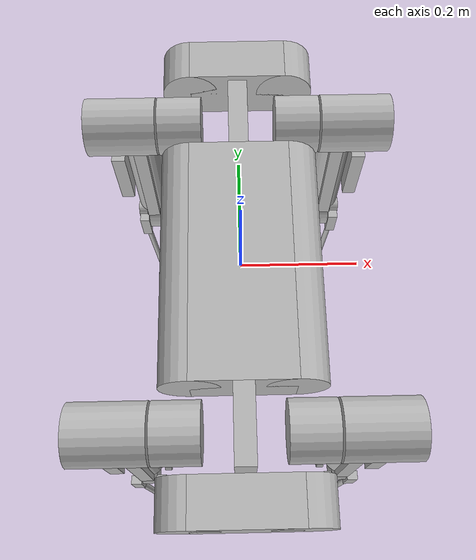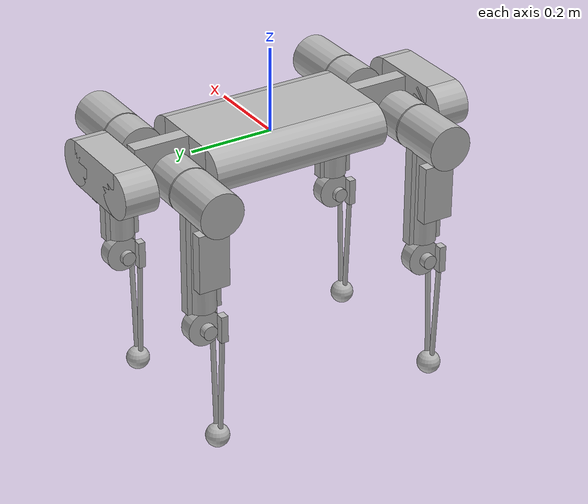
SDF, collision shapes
<sdf version='1.6'>
  <model name='dogbot'>
    <link name='base_link'>
      <pose frame=''>0 0 0 0 -0 0</pose>
      <inertial>
        <pose frame=''>0 0 0 0 -0 0</pose>
        <mass>9.301</mass>
        <inertia>
          <ixx>0.41</ixx>
          <ixy>0</ixy>
          <ixz>0</ixz>
          <iyy>0.091</iyy>
          <iyz>0</iyz>
          <izz>0.482</izz>
        </inertia>
      </inertial>
      <collision name='base_link_fixed_joint_lump__body_collision'>
        <pose frame=''>0 0 0 0 -0 0</pose>
        <geometry>
          <box>
            <size>0.177 0.433 0.105</size>
          </box>
        </geometry>
        <surface>
          <contact>
            <ode>
              <kp>1e+06</kp>
              <kd>1</kd>
            </ode>
          </contact>
          <friction>
            <ode>
              <mu>200</mu>
              <mu2>100</mu2>
            </ode>
          </friction>
        </surface>
      </collision>
      <collision name='base_link_fixed_joint_lump__body_collision_1'>
        <pose frame=''>0.0885 0 0 1.5708 -0 0</pose>
        <geometry>
          <cylinder>
            <length>0.433</length>
            <radius>0.0525</radius>
          </cylinder>
        </geometry>
        <surface>
          <contact>
            <ode>
              <kp>1e+06</kp>
              <kd>1</kd>
            </ode>
          </contact>
          <friction>
            <ode>
              <mu>200</mu>
              <mu2>100</mu2>
            </ode>
          </friction>
        </surface>
      </collision>
      <collision name='base_link_fixed_joint_lump__body_collision_2'>
        <pose frame=''>-0.0885 0 0 1.5708 -0 0</pose>
        <geometry>
          <cylinder>
            <length>0.433</length>
            <radius>0.0525</radius>
          </cylinder>
        </geometry>
        <surface>
          <contact>
            <ode>
              <kp>1e+06</kp>
              <kd>1</kd>
            </ode>
          </contact>
          <friction>
            <ode>
              <mu>200</mu>
              <mu2>100</mu2>
            </ode>
          </friction>
        </surface>
      </collision>
      <collision name='base_link_fixed_joint_lump__body_collision_3'>
        <pose frame=''>0 0.2825 0 0 -0 0</pose>
        <geometry>
          <box>
            <size>0.035 0.132 0.105</size>
          </box>
        </geometry>
        <surface>
          <contact>
            <ode>
              <kp>1e+06</kp>
              <kd>1</kd>
            </ode>
          </contact>
          <friction>
            <ode>
              <mu>200</mu>
              <mu2>100</mu2>
            </ode>
          </friction>
        </surface>
      </collision>
      <collision name='base_link_fixed_joint_lump__body_collision_4'>
        <pose frame=''>0 -0.2825 0 0 -0 0</pose>
        <geometry>
          <box>
            <size>0.035 0.132 0.105</size>
          </box>
        </geometry>
        <surface>
          <contact>
            <ode>
              <kp>1e+06</kp>
              <kd>1</kd>
            </ode>
          </contact>
          <friction>
            <ode>
              <mu>200</mu>
              <mu2>100</mu2>
            </ode>
          </friction>
        </surface>
      </collision>
      <collision name='base_link_fixed_joint_lump__body_collision_5'>
        <pose frame=''>0 0.3975 0 0 -0 0</pose>
        <geometry>
          <box>
            <size>0.177 0.08 0.105</size>
          </box>
        </geometry>
        <surface>
          <contact>
            <ode>
              <kp>1e+06</kp>
              <kd>1</kd>
            </ode>
          </contact>
          <friction>
            <ode>
              <mu>200</mu>
              <mu2>100</mu2>
            </ode>
          </friction>
        </surface>
      </collision>
      <collision name='base_link_fixed_joint_lump__body_collision_6'>
        <pose frame=''>0.0885 0.3975 0 1.5708 -0 0</pose>
        <geometry>
          <cylinder>
            <length>0.08</length>
            <radius>0.0525</radius>
          </cylinder>
        </geometry>
        <surface>
          <contact>
            <ode>
              <kp>1e+06</kp>
              <kd>1</kd>
            </ode>
          </contact>
          <friction>
            <ode>
              <mu>200</mu>
              <mu2>100</mu2>
            </ode>
          </friction>
        </surface>
      </collision>
      <collision name='base_link_fixed_joint_lump__body_collision_7'>
        <pose frame=''>-0.0885 0.3975 0 1.5708 -0 0</pose>
        <geometry>
          <cylinder>
            <length>0.08</length>
            <radius>0.0525</radius>
          </cylinder>
        </geometry>
        <surface>
          <contact>
            <ode>
              <kp>1e+06</kp>
              <kd>1</kd>
            </ode>
          </contact>
          <friction>
            <ode>
              <mu>200</mu>
              <mu2>100</mu2>
            </ode>
          </friction>
        </surface>
      </collision>
      <collision name='base_link_fixed_joint_lump__body_collision_8'>
        <pose frame=''>0 -0.3975 0 0 -0 0</pose>
        <geometry>
          <box>
            <size>0.177 0.08 0.105</size>
          </box>
        </geometry>
        <surface>
          <contact>
            <ode>
              <kp>1e+06</kp>
              <kd>1</kd>
            </ode>
          </contact>
          <friction>
            <ode>
              <mu>200</mu>
              <mu2>100</mu2>
            </ode>
          </friction>
        </surface>
      </collision>
      <collision name='base_link_fixed_joint_lump__body_collision_9'>
        <pose frame=''>0.0885 -0.3975 0 1.5708 -0 0</pose>
        <geometry>
          <cylinder>
            <length>0.08</length>
            <radius>0.0525</radius>
          </cylinder>
        </geometry>
        <surface>
          <contact>
            <ode>
              <kp>1e+06</kp>
              <kd>1</kd>
            </ode>
          </contact>
          <friction>
            <ode>
              <mu>200</mu>
              <mu2>100</mu2>
            </ode>
          </friction>
        </surface>
      </collision>
      <collision name='base_link_fixed_joint_lump__body_collision_10'>
        <pose frame=''>-0.0885 -0.3975 0 1.5708 -0 0</pose>
        <geometry>
          <cylinder>
            <length>0.08</length>
            <radius>0.0525</radius>
          </cylinder>
        </geometry>
        <surface>
          <contact>
            <ode>
              <kp>1e+06</kp>
              <kd>1</kd>
            </ode>
          </contact>
          <friction>
            <ode>
              <mu>200</mu>
              <mu2>100</mu2>
            </ode>
          </friction>
        </surface>
      </collision>
      <visual name='base_link_fixed_joint_lump__body_visual'>
        <pose frame=''>0 0 0 -1.5708 0 0</pose>
        <geometry>
          <mesh>
            <scale>1 1 1</scale>
            <uri>model://dogbot_description/meshes/body.dae</uri>
          </mesh>
        </geometry>
        <material>
          <script>
            <uri>__default__</uri>
            <name>__default__</name>
          </script>
        </material>
      </visual>
      <visual name='base_link_fixed_joint_lump__bodytext_visual_1'>
        <pose frame=''>0 0 0 -1.5708 0 0</pose>
        <geometry>
          <mesh>
            <scale>1 1 1</scale>
            <uri>model://dogbot_description/meshes/bodyTEXT.dae</uri>
          </mesh>
        </geometry>
      </visual>
      <gravity>1</gravity>
      <velocity_decay/>
    </link>
    <link name='back_left_hip'>
      <pose frame=''>-0.088 -0.2875 0 0 -0 0</pose>
      <inertial>
        <pose frame=''>-0.0074 0 0 0 -0 0</pose>
        <mass>0.836</mass>
        <inertia>
          <ixx>0.00213</ixx>
          <ixy>0</ixy>
          <ixz>0</ixz>
          <iyy>0.00147</iyy>
          <iyz>0</iyz>
          <izz>0.00172</izz>
        </inertia>
      </inertial>
      <collision name='back_left_hip_collision'>
        <pose frame=''>-0.02 0 0 3.14159 1.57079 3.14159</pose>
        <geometry>
          <cylinder>
            <length>0.08</length>
            <radius>0.0525</radius>
          </cylinder>
        </geometry>
      </collision>
      <visual name='back_left_hip_visual'>
        <pose frame=''>0 0 0 1.5708 0 -3.14159</pose>
        <geometry>
          <mesh>
            <scale>1 1 1</scale>
            <uri>model://dogbot_description/meshes/hip.dae</uri>
          </mesh>
        </geometry>
      </visual>
    </link>
    <joint name='back_left_roll_joint' type='revolute'>
      <child>back_left_hip</child>
      <parent>base_link</parent>
      <axis>
        <xyz>0 -1 0</xyz>
        <limit>
          <lower>-1.7453</lower>
          <upper>1.7453</upper>
          <effort>60</effort>
          <velocity>6</velocity>
        </limit>
        <dynamics>
          <spring_reference>0</spring_reference>
          <spring_stiffness>0</spring_stiffness>
        </dynamics>
        <use_parent_model_frame>1</use_parent_model_frame>
      </axis>
    </joint>
    <link name='back_left_upperleg'>
      <pose frame=''>-0.18675 -0.2875 0 0 -0 0</pose>
      <inertial>
        <pose frame=''>-0.0418 0 -0.0517 0 -0 0</pose>
        <mass>1.851</mass>
        <inertia>
          <ixx>0.0238</ixx>
          <ixy>0</ixy>
          <ixz>0</ixz>
          <iyy>0.0252</iyy>
          <iyz>0</iyz>
          <izz>0.0044</izz>
        </inertia>
      </inertial>
      <collision name='back_left_upperleg_collision'>
        <pose frame=''>-0.03 0 0 3.14159 1.57079 3.14159</pose>
        <geometry>
          <cylinder>
            <length>0.13</length>
            <radius>0.0525</radius>
          </cylinder>
        </geometry>
      </collision>
      <collision name='back_left_upperleg_collision_1'>
        <pose frame=''>0 0 -0.135 0 -0 0</pose>
        <geometry>
          <cylinder>
            <length>0.27</length>
            <radius>0.033</radius>
          </cylinder>
        </geometry>
      </collision>
      <collision name='back_left_upperleg_collision_2'>
        <pose frame=''>0 0 -0.135 0 -0 0</pose>
        <geometry>
          <box>
            <size>0.025 0.084 0.27</size>
          </box>
        </geometry>
      </collision>
      <collision name='back_left_upperleg_collision_3'>
        <pose frame=''>-0.046 0 -0.126 0 -0 0</pose>
        <geometry>
          <box>
            <size>0.026 0.074 0.138</size>
          </box>
        </geometry>
      </collision>
      <collision name='back_left_upperleg_collision_4'>
        <pose frame=''>-0.03 0 -0.315 3.14159 1.57079 3.14159</pose>
        <geometry>
          <cylinder>
            <length>0.018</length>
            <radius>0.017</radius>
          </cylinder>
        </geometry>
      </collision>
      <collision name='back_left_upperleg_collision_5'>
        <pose frame=''>0.036 0 -0.315 3.14159 1.57079 3.14159</pose>
        <geometry>
          <cylinder>
            <length>0.013</length>
            <radius>0.017</radius>
          </cylinder>
        </geometry>
      </collision>
      <visual name='back_left_upperleg_visual'>
        <pose frame=''>0 0 0 -1.5708 -0 3.14159</pose>
        <geometry>
          <mesh>
            <scale>1 1 1</scale>
            <uri>model://dogbot_description/meshes/LegUpper_withCover.dae</uri>
          </mesh>
        </geometry>
      </visual>
    </link>
    <joint name='back_left_pitch_joint' type='revolute'>
      <child>back_left_upperleg</child>
      <parent>back_left_hip</parent>
      <axis>
        <xyz>-1 0 0</xyz>
        <limit>
          <lower>-1.5708</lower>
          <upper>3.14159</upper>
          <effort>60</effort>
          <velocity>6</velocity>
        </limit>
        <dynamics>
          <spring_reference>0</spring_reference>
          <spring_stiffness>0</spring_stiffness>
        </dynamics>
        <use_parent_model_frame>1</use_parent_model_frame>
      </axis>
    </joint>
    <link name='back_left_lowerleg'>
      <pose frame=''>-0.18675 -0.2875 -0.315 0 -0 0</pose>
      <inertial>
        <pose frame=''>0 -0.028904 -0.143425 0 -0 0</pose>
        <mass>0.303</mass>
        <inertia>
          <ixx>0.00529148</ixx>
          <ixy>0</ixy>
          <ixz>0</ixz>
          <iyy>0.00511064</iyy>
          <iyz>-4.15933e-06</iyz>
          <izz>0.000800838</izz>
        </inertia>
      </inertial>
      <collision name='back_left_lowerleg_collision'>
        <pose frame=''>0 0 0 3.14159 1.57079 3.14159</pose>
        <geometry>
          <cylinder>
            <length>0.033</length>
            <radius>0.042</radius>
          </cylinder>
        </geometry>
        <surface>
          <contact>
            <ode>
              <kp>1e+06</kp>
              <kd>1</kd>
            </ode>
          </contact>
          <friction>
            <ode>
              <mu>2000</mu>
              <mu2>1000</mu2>
            </ode>
          </friction>
        </surface>
      </collision>
      <collision name='back_left_lowerleg_collision_1'>
        <pose frame=''>0.024 -0.0375 -0.0055 0 -0 0</pose>
        <geometry>
          <box>
            <size>0.02 0.017 0.065</size>
          </box>
        </geometry>
        <surface>
          <contact>
            <ode>
              <kp>1e+06</kp>
              <kd>1</kd>
            </ode>
          </contact>
          <friction>
            <ode>
              <mu>2000</mu>
              <mu2>1000</mu2>
            </ode>
          </friction>
        </surface>
      </collision>
      <collision name='back_left_lowerleg_collision_2'>
        <pose frame=''>-0.024 -0.0375 -0.0055 0 -0 0</pose>
        <geometry>
          <box>
            <size>0.02 0.017 0.065</size>
          </box>
        </geometry>
        <surface>
          <contact>
            <ode>
              <kp>1e+06</kp>
              <kd>1</kd>
            </ode>
          </contact>
          <friction>
            <ode>
              <mu>2000</mu>
              <mu2>1000</mu2>
            </ode>
          </friction>
        </surface>
      </collision>
      <collision name='back_left_lowerleg_collision_3'>
        <pose frame=''>0.01575 -0.0375 -0.145 0 0.04996 0</pose>
        <geometry>
          <cylinder>
            <length>0.29</length>
            <radius>0.006</radius>
          </cylinder>
        </geometry>
        <surface>
          <contact>
            <ode>
              <kp>1e+06</kp>
              <kd>1</kd>
            </ode>
          </contact>
          <friction>
            <ode>
              <mu>2000</mu>
              <mu2>1000</mu2>
            </ode>
          </friction>
        </surface>
      </collision>
      <collision name='back_left_lowerleg_collision_4'>
        <pose frame=''>-0.01575 -0.0375 -0.145 0 -0.04996 0</pose>
        <geometry>
          <cylinder>
            <length>0.29</length>
            <radius>0.006</radius>
          </cylinder>
        </geometry>
        <surface>
          <contact>
            <ode>
              <kp>1e+06</kp>
              <kd>1</kd>
            </ode>
          </contact>
          <friction>
            <ode>
              <mu>2000</mu>
              <mu2>1000</mu2>
            </ode>
          </friction>
        </surface>
      </collision>
      <collision name='back_left_lowerleg_fixed_joint_lump__back_left_foot_collision_5'>
        <pose frame=''>0 -0.035 -0.3 0 -0 0</pose>
        <geometry>
          <sphere>
            <radius>0.028</radius>
          </sphere>
        </geometry>
        <surface>
          <contact>
            <ode>
              <kp>1e+06</kp>
              <kd>1</kd>
            </ode>
          </contact>
          <friction>
            <ode>
              <mu>2000</mu>
              <mu2>1000</mu2>
            </ode>
          </friction>
        </surface>
      </collision>
      <visual name='back_left_lowerleg_visual'>
        <pose frame=''>0 0 0 -1.5708 0 0</pose>
        <geometry>
          <mesh>
            <scale>1 1 1</scale>
            <uri>model://dogbot_description/meshes/LegLower_nofoot.dae</uri>
          </mesh>
        </geometry>
        <material>
          <script>
            <uri>__default__</uri>
            <name>__default__</name>
          </script>
        </material>
      </visual>
      <visual name='back_left_lowerleg_fixed_joint_lump__back_left_foot_visual_1'>
        <pose frame=''>0 0 0 -1.5708 0 0</pose>
        <geometry>
          <mesh>
            <scale>1 1 1</scale>
            <uri>model://dogbot_description/meshes/foot.dae</uri>
          </mesh>
        </geometry>
        <material>
          <script>
            <uri>__default__</uri>
            <name>__default__</name>
          </script>
        </material>
      </visual>
      <velocity_decay/>
      <self_collide>1</self_collide>
      <gravity>1</gravity>
      <velocity_decay/>
      <sensor name='back_left_contactsensor_sensor' type='contact'>
        <always_on>1</always_on>
        <contact>
          <collision>back_left_lowerleg_fixed_joint_lump__back_left_foot_collision_5</collision>
          <topic>__default_topic__</topic>
        </contact>
        <plugin name='back_left_foot_plugin' filename='libgazebo_ros_bumper.so'>
          <bumperTopicName>back_left_contactsensor_state</bumperTopicName>
          <frameName>world</frameName>
        </plugin>
        <pose frame=''>0 0 0 0 -0 0</pose>
      </sensor>
    </link>
    <joint name='back_left_knee_joint' type='revolute'>
      <child>back_left_lowerleg</child>
      <parent>back_left_upperleg</parent>
      <axis>
        <xyz>1 0 0</xyz>
        <limit>
          <lower>-2.61795</lower>
          <upper>0.02</upper>
          <effort>60</effort>
          <velocity>6</velocity>
        </limit>
        <dynamics>
          <spring_reference>0</spring_reference>
          <spring_stiffness>0</spring_stiffness>
        </dynamics>
        <use_parent_model_frame>1</use_parent_model_frame>
      </axis>
    </joint>
    <link name='back_right_hip'>
      <pose frame=''>0.088 -0.2875 0 0 -0 0</pose>
      <inertial>
        <pose frame=''>0.0074 0 0 0 -0 0</pose>
        <mass>0.836</mass>
        <inertia>
          <ixx>0.00213</ixx>
          <ixy>0</ixy>
          <ixz>0</ixz>
          <iyy>0.00147</iyy>
          <iyz>0</iyz>
          <izz>0.00172</izz>
        </inertia>
      </inertial>
      <collision name='back_right_hip_collision'>
        <pose frame=''>0.02 0 0 3.14159 1.57079 3.14159</pose>
        <geometry>
          <cylinder>
            <length>0.08</length>
            <radius>0.0525</radius>
          </cylinder>
        </geometry>
      </collision>
      <visual name='back_right_hip_visual'>
        <pose frame=''>0 0 0 -1.5708 0 0</pose>
        <geometry>
          <mesh>
            <scale>1 1 1</scale>
            <uri>model://dogbot_description/meshes/hip.dae</uri>
          </mesh>
        </geometry>
      </visual>
    </link>
    <joint name='back_right_roll_joint' type='revolute'>
      <child>back_right_hip</child>
      <parent>base_link</parent>
      <axis>
        <xyz>0 -1 0</xyz>
        <limit>
          <lower>-1.7453</lower>
          <upper>1.7453</upper>
          <effort>60</effort>
          <velocity>6</velocity>
        </limit>
        <dynamics>
          <spring_reference>0</spring_reference>
          <spring_stiffness>0</spring_stiffness>
        </dynamics>
        <use_parent_model_frame>1</use_parent_model_frame>
      </axis>
    </joint>
    <link name='back_right_upperleg'>
      <pose frame=''>0.18675 -0.2875 0 0 -0 0</pose>
      <inertial>
        <pose frame=''>0.0418 0 -0.0517 0 -0 0</pose>
        <mass>1.851</mass>
        <inertia>
          <ixx>0.0238</ixx>
          <ixy>0</ixy>
          <ixz>0</ixz>
          <iyy>0.0252</iyy>
          <iyz>0</iyz>
          <izz>0.0044</izz>
        </inertia>
      </inertial>
      <collision name='back_right_upperleg_collision'>
        <pose frame=''>0.03 0 0 3.14159 1.57079 3.14159</pose>
        <geometry>
          <cylinder>
            <length>0.13</length>
            <radius>0.0525</radius>
          </cylinder>
        </geometry>
      </collision>
      <collision name='back_right_upperleg_collision_1'>
        <pose frame=''>0 0 -0.135 0 -0 0</pose>
        <geometry>
          <cylinder>
            <length>0.27</length>
            <radius>0.033</radius>
          </cylinder>
        </geometry>
      </collision>
      <collision name='back_right_upperleg_collision_2'>
        <pose frame=''>0 0 -0.135 0 -0 0</pose>
        <geometry>
          <box>
            <size>0.025 0.084 0.27</size>
          </box>
        </geometry>
      </collision>
      <collision name='back_right_upperleg_collision_3'>
        <pose frame=''>0.046 0 -0.126 0 -0 0</pose>
        <geometry>
          <box>
            <size>0.026 0.074 0.138</size>
          </box>
        </geometry>
      </collision>
      <collision name='back_right_upperleg_collision_4'>
        <pose frame=''>0.03 0 -0.315 3.14159 1.57079 3.14159</pose>
        <geometry>
          <cylinder>
            <length>0.018</length>
            <radius>0.017</radius>
          </cylinder>
        </geometry>
      </collision>
      <collision name='back_right_upperleg_collision_5'>
        <pose frame=''>-0.036 0 -0.315 3.14159 1.57079 3.14159</pose>
        <geometry>
          <cylinder>
            <length>0.013</length>
            <radius>0.017</radius>
          </cylinder>
        </geometry>
      </collision>
      <visual name='back_right_upperleg_visual'>
        <pose frame=''>0 0 0 -1.5708 0 0</pose>
        <geometry>
          <mesh>
            <scale>1 1 1</scale>
            <uri>model://dogbot_description/meshes/LegUpper_withCover.dae</uri>
          </mesh>
        </geometry>
      </visual>
    </link>
    <joint name='back_right_pitch_joint' type='revolute'>
      <child>back_right_upperleg</child>
      <parent>back_right_hip</parent>
      <axis>
        <xyz>1 0 0</xyz>
        <limit>
          <lower>-3.14159</lower>
          <upper>1.5708</upper>
          <effort>60</effort>
          <velocity>6</velocity>
        </limit>
        <dynamics>
          <spring_reference>0</spring_reference>
          <spring_stiffness>0</spring_stiffness>
        </dynamics>
        <use_parent_model_frame>1</use_parent_model_frame>
      </axis>
    </joint>
    <link name='back_right_lowerleg'>
      <pose frame=''>0.18675 -0.2875 -0.315 0 -0 0</pose>
      <inertial>
        <pose frame=''>0 -0.028904 -0.143425 0 -0 0</pose>
        <mass>0.303</mass>
        <inertia>
          <ixx>0.00529148</ixx>
          <ixy>0</ixy>
          <ixz>0</ixz>
          <iyy>0.00511064</iyy>
          <iyz>-4.15933e-06</iyz>
          <izz>0.000800838</izz>
        </inertia>
      </inertial>
      <collision name='back_right_lowerleg_collision'>
        <pose frame=''>0 0 0 3.14159 1.57079 3.14159</pose>
        <geometry>
          <cylinder>
            <length>0.033</length>
            <radius>0.042</radius>
          </cylinder>
        </geometry>
        <surface>
          <contact>
            <ode>
              <kp>1e+06</kp>
              <kd>1</kd>
            </ode>
          </contact>
          <friction>
            <ode>
              <mu>2000</mu>
              <mu2>1000</mu2>
            </ode>
          </friction>
        </surface>
      </collision>
      <collision name='back_right_lowerleg_collision_1'>
        <pose frame=''>0.024 -0.0375 -0.0055 0 -0 0</pose>
        <geometry>
          <box>
            <size>0.02 0.017 0.065</size>
          </box>
        </geometry>
        <surface>
          <contact>
            <ode>
              <kp>1e+06</kp>
              <kd>1</kd>
            </ode>
          </contact>
          <friction>
            <ode>
              <mu>2000</mu>
              <mu2>1000</mu2>
            </ode>
          </friction>
        </surface>
      </collision>
      <collision name='back_right_lowerleg_collision_2'>
        <pose frame=''>-0.024 -0.0375 -0.0055 0 -0 0</pose>
        <geometry>
          <box>
            <size>0.02 0.017 0.065</size>
          </box>
        </geometry>
        <surface>
          <contact>
            <ode>
              <kp>1e+06</kp>
              <kd>1</kd>
            </ode>
          </contact>
          <friction>
            <ode>
              <mu>2000</mu>
              <mu2>1000</mu2>
            </ode>
          </friction>
        </surface>
      </collision>
      <collision name='back_right_lowerleg_collision_3'>
        <pose frame=''>0.01575 -0.0375 -0.145 0 0.04996 0</pose>
        <geometry>
          <cylinder>
            <length>0.29</length>
            <radius>0.006</radius>
          </cylinder>
        </geometry>
        <surface>
          <contact>
            <ode>
              <kp>1e+06</kp>
              <kd>1</kd>
            </ode>
          </contact>
          <friction>
            <ode>
              <mu>2000</mu>
              <mu2>1000</mu2>
            </ode>
          </friction>
        </surface>
      </collision>
      <collision name='back_right_lowerleg_collision_4'>
        <pose frame=''>-0.01575 -0.0375 -0.145 0 -0.04996 0</pose>
        <geometry>
          <cylinder>
            <length>0.29</length>
            <radius>0.006</radius>
          </cylinder>
        </geometry>
        <surface>
          <contact>
            <ode>
              <kp>1e+06</kp>
              <kd>1</kd>
            </ode>
          </contact>
          <friction>
            <ode>
              <mu>2000</mu>
              <mu2>1000</mu2>
            </ode>
          </friction>
        </surface>
      </collision>
      <collision name='back_right_lowerleg_fixed_joint_lump__back_right_foot_collision_5'>
        <pose frame=''>0 -0.035 -0.3 0 -0 0</pose>
        <geometry>
          <sphere>
            <radius>0.028</radius>
          </sphere>
        </geometry>
        <surface>
          <contact>
            <ode>
              <kp>1e+06</kp>
              <kd>1</kd>
            </ode>
          </contact>
          <friction>
            <ode>
              <mu>2000</mu>
              <mu2>1000</mu2>
            </ode>
          </friction>
        </surface>
      </collision>
      <visual name='back_right_lowerleg_visual'>
        <pose frame=''>0 0 0 -1.5708 0 0</pose>
        <geometry>
          <mesh>
            <scale>1 1 1</scale>
            <uri>model://dogbot_description/meshes/LegLower_nofoot.dae</uri>
          </mesh>
        </geometry>
        <material>
          <script>
            <uri>__default__</uri>
            <name>__default__</name>
          </script>
        </material>
      </visual>
      <visual name='back_right_lowerleg_fixed_joint_lump__back_right_foot_visual_1'>
        <pose frame=''>0 0 0 -1.5708 0 0</pose>
        <geometry>
          <mesh>
            <scale>1 1 1</scale>
            <uri>model://dogbot_description/meshes/foot.dae</uri>
          </mesh>
        </geometry>
        <material>
          <script>
            <uri>__default__</uri>
            <name>__default__</name>
          </script>
        </material>
      </visual>
      <velocity_decay/>
      <self_collide>1</self_collide>
      <gravity>1</gravity>
      <velocity_decay/>
      <sensor name='back_right_contactsensor_sensor' type='contact'>
        <always_on>1</always_on>
        <contact>
          <collision>back_right_lowerleg_fixed_joint_lump__back_right_foot_collision_5</collision>
          <topic>__default_topic__</topic>
        </contact>
        <plugin name='back_right_foot_plugin' filename='libgazebo_ros_bumper.so'>
          <bumperTopicName>back_right_contactsensor_state</bumperTopicName>
          <frameName>world</frameName>
        </plugin>
        <pose frame=''>0 0 0 0 -0 0</pose>
      </sensor>
    </link>
    <joint name='back_right_knee_joint' type='revolute'>
      <child>back_right_lowerleg</child>
      <parent>back_right_upperleg</parent>
      <axis>
        <xyz>-1 0 0</xyz>
        <limit>
          <lower>-0.02</lower>
          <upper>2.61795</upper>
          <effort>60</effort>
          <velocity>6</velocity>
        </limit>
        <dynamics>
          <spring_reference>0</spring_reference>
          <spring_stiffness>0</spring_stiffness>
        </dynamics>
        <use_parent_model_frame>1</use_parent_model_frame>
      </axis>
    </joint>
    <link name='front_left_hip'>
      <pose frame=''>-0.088 0.2875 0 0 -0 0</pose>
      <inertial>
        <pose frame=''>-0.0074 0 0 0 -0 0</pose>
        <mass>0.836</mass>
        <inertia>
          <ixx>0.00213</ixx>
          <ixy>0</ixy>
          <ixz>0</ixz>
          <iyy>0.00147</iyy>
          <iyz>0</iyz>
          <izz>0.00172</izz>
        </inertia>
      </inertial>
      <collision name='front_left_hip_collision'>
        <pose frame=''>-0.02 0 0 3.14159 1.57079 3.14159</pose>
        <geometry>
          <cylinder>
            <length>0.08</length>
            <radius>0.0525</radius>
          </cylinder>
        </geometry>
      </collision>
      <visual name='front_left_hip_visual'>
        <pose frame=''>0 0 0 1.5708 0 -3.14159</pose>
        <geometry>
          <mesh>
            <scale>1 1 1</scale>
            <uri>model://dogbot_description/meshes/hip.dae</uri>
          </mesh>
        </geometry>
      </visual>
    </link>
    <joint name='front_left_roll_joint' type='revolute'>
      <child>front_left_hip</child>
      <parent>base_link</parent>
      <axis>
        <xyz>0 1 0</xyz>
        <limit>
          <lower>-1.7453</lower>
          <upper>1.7453</upper>
          <effort>60</effort>
          <velocity>6</velocity>
        </limit>
        <dynamics>
          <spring_reference>0</spring_reference>
          <spring_stiffness>0</spring_stiffness>
        </dynamics>
        <use_parent_model_frame>1</use_parent_model_frame>
      </axis>
    </joint>
    <link name='front_left_upperleg'>
      <pose frame=''>-0.18675 0.2875 0 0 -0 0</pose>
      <inertial>
        <pose frame=''>-0.0418 0 -0.0517 0 -0 0</pose>
        <mass>1.851</mass>
        <inertia>
          <ixx>0.0238</ixx>
          <ixy>0</ixy>
          <ixz>0</ixz>
          <iyy>0.0252</iyy>
          <iyz>0</iyz>
          <izz>0.0044</izz>
        </inertia>
      </inertial>
      <collision name='front_left_upperleg_collision'>
        <pose frame=''>-0.03 0 0 3.14159 1.57079 3.14159</pose>
        <geometry>
          <cylinder>
            <length>0.13</length>
            <radius>0.0525</radius>
          </cylinder>
        </geometry>
      </collision>
      <collision name='front_left_upperleg_collision_1'>
        <pose frame=''>0 0 -0.135 0 -0 0</pose>
        <geometry>
          <cylinder>
            <length>0.27</length>
            <radius>0.033</radius>
          </cylinder>
        </geometry>
      </collision>
      <collision name='front_left_upperleg_collision_2'>
        <pose frame=''>0 0 -0.135 0 -0 0</pose>
        <geometry>
          <box>
            <size>0.025 0.084 0.27</size>
          </box>
        </geometry>
      </collision>
      <collision name='front_left_upperleg_collision_3'>
        <pose frame=''>-0.046 0 -0.126 0 -0 0</pose>
        <geometry>
          <box>
            <size>0.026 0.074 0.138</size>
          </box>
        </geometry>
      </collision>
      <collision name='front_left_upperleg_collision_4'>
        <pose frame=''>-0.03 0 -0.315 3.14159 1.57079 3.14159</pose>
        <geometry>
          <cylinder>
            <length>0.018</length>
            <radius>0.017</radius>
          </cylinder>
        </geometry>
      </collision>
      <collision name='front_left_upperleg_collision_5'>
        <pose frame=''>0.036 0 -0.315 3.14159 1.57079 3.14159</pose>
        <geometry>
          <cylinder>
            <length>0.013</length>
            <radius>0.017</radius>
          </cylinder>
        </geometry>
      </collision>
      <visual name='front_left_upperleg_visual'>
        <pose frame=''>0 0 0 -1.5708 -0 3.14159</pose>
        <geometry>
          <mesh>
            <scale>1 1 1</scale>
            <uri>model://dogbot_description/meshes/LegUpper_withCover.dae</uri>
          </mesh>
        </geometry>
      </visual>
    </link>
    <joint name='front_left_pitch_joint' type='revolute'>
      <child>front_left_upperleg</child>
      <parent>front_left_hip</parent>
      <axis>
        <xyz>-1 0 0</xyz>
        <limit>
          <lower>-1.5708</lower>
          <upper>3.14159</upper>
          <effort>60</effort>
          <velocity>6</velocity>
        </limit>
        <dynamics>
          <spring_reference>0</spring_reference>
          <spring_stiffness>0</spring_stiffness>
        </dynamics>
        <use_parent_model_frame>1</use_parent_model_frame>
      </axis>
    </joint>
    <link name='front_left_lowerleg'>
      <pose frame=''>-0.18675 0.2875 -0.315 0 -0 0</pose>
      <inertial>
        <pose frame=''>0 -0.028904 -0.143425 0 -0 0</pose>
        <mass>0.303</mass>
        <inertia>
          <ixx>0.00529148</ixx>
          <ixy>0</ixy>
          <ixz>0</ixz>
          <iyy>0.00511064</iyy>
          <iyz>-4.15933e-06</iyz>
          <izz>0.000800838</izz>
        </inertia>
      </inertial>
      <collision name='front_left_lowerleg_collision'>
        <pose frame=''>0 0 0 3.14159 1.57079 3.14159</pose>
        <geometry>
          <cylinder>
            <length>0.033</length>
            <radius>0.042</radius>
          </cylinder>
        </geometry>
        <surface>
          <contact>
            <ode>
              <kp>1e+06</kp>
              <kd>1</kd>
            </ode>
          </contact>
          <friction>
            <ode>
              <mu>2000</mu>
              <mu2>1000</mu2>
            </ode>
          </friction>
        </surface>
      </collision>
      <collision name='front_left_lowerleg_collision_1'>
        <pose frame=''>0.024 -0.0375 -0.0055 0 -0 0</pose>
        <geometry>
          <box>
            <size>0.02 0.017 0.065</size>
          </box>
        </geometry>
        <surface>
          <contact>
            <ode>
              <kp>1e+06</kp>
              <kd>1</kd>
            </ode>
          </contact>
          <friction>
            <ode>
              <mu>2000</mu>
              <mu2>1000</mu2>
            </ode>
          </friction>
        </surface>
      </collision>
      <collision name='front_left_lowerleg_collision_2'>
        <pose frame=''>-0.024 -0.0375 -0.0055 0 -0 0</pose>
        <geometry>
          <box>
            <size>0.02 0.017 0.065</size>
          </box>
        </geometry>
        <surface>
          <contact>
            <ode>
              <kp>1e+06</kp>
              <kd>1</kd>
            </ode>
          </contact>
          <friction>
            <ode>
              <mu>2000</mu>
              <mu2>1000</mu2>
            </ode>
          </friction>
        </surface>
      </collision>
      <collision name='front_left_lowerleg_collision_3'>
        <pose frame=''>0.01575 -0.0375 -0.145 0 0.04996 0</pose>
        <geometry>
          <cylinder>
            <length>0.29</length>
            <radius>0.006</radius>
          </cylinder>
        </geometry>
        <surface>
          <contact>
            <ode>
              <kp>1e+06</kp>
              <kd>1</kd>
            </ode>
          </contact>
          <friction>
            <ode>
              <mu>2000</mu>
              <mu2>1000</mu2>
            </ode>
          </friction>
        </surface>
      </collision>
      <collision name='front_left_lowerleg_collision_4'>
        <pose frame=''>-0.01575 -0.0375 -0.145 0 -0.04996 0</pose>
        <geometry>
          <cylinder>
            <length>0.29</length>
            <radius>0.006</radius>
          </cylinder>
        </geometry>
        <surface>
          <contact>
            <ode>
              <kp>1e+06</kp>
              <kd>1</kd>
            </ode>
          </contact>
          <friction>
            <ode>
              <mu>2000</mu>
              <mu2>1000</mu2>
            </ode>
          </friction>
        </surface>
      </collision>
      <collision name='front_left_lowerleg_fixed_joint_lump__front_left_foot_collision_5'>
        <pose frame=''>0 -0.035 -0.3 0 -0 0</pose>
        <geometry>
          <sphere>
            <radius>0.028</radius>
          </sphere>
        </geometry>
        <surface>
          <contact>
            <ode>
              <kp>1e+06</kp>
              <kd>1</kd>
            </ode>
          </contact>
          <friction>
            <ode>
              <mu>2000</mu>
              <mu2>1000</mu2>
            </ode>
          </friction>
        </surface>
      </collision>
      <visual name='front_left_lowerleg_visual'>
        <pose frame=''>0 0 0 -1.5708 0 0</pose>
        <geometry>
          <mesh>
            <scale>1 1 1</scale>
            <uri>model://dogbot_description/meshes/LegLower_nofoot.dae</uri>
          </mesh>
        </geometry>
        <material>
          <script>
            <uri>__default__</uri>
            <name>__default__</name>
          </script>
        </material>
      </visual>
      <visual name='front_left_lowerleg_fixed_joint_lump__front_left_foot_visual_1'>
        <pose frame=''>0 0 0 -1.5708 0 0</pose>
        <geometry>
          <mesh>
            <scale>1 1 1</scale>
            <uri>model://dogbot_description/meshes/foot.dae</uri>
          </mesh>
        </geometry>
        <material>
          <script>
            <uri>__default__</uri>
            <name>__default__</name>
          </script>
        </material>
      </visual>
      <velocity_decay/>
      <self_collide>1</self_collide>
      <gravity>1</gravity>
      <velocity_decay/>
      <sensor name='front_left_contactsensor_sensor' type='contact'>
        <always_on>1</always_on>
        <contact>
          <collision>front_left_lowerleg_fixed_joint_lump__front_left_foot_collision_5</collision>
          <topic>__default_topic__</topic>
        </contact>
        <plugin name='front_left_foot_plugin' filename='libgazebo_ros_bumper.so'>
          <bumperTopicName>front_left_contactsensor_state</bumperTopicName>
          <frameName>world</frameName>
        </plugin>
        <pose frame=''>0 0 0 0 -0 0</pose>
      </sensor>
    </link>
    <joint name='front_left_knee_joint' type='revolute'>
      <child>front_left_lowerleg</child>
      <parent>front_left_upperleg</parent>
      <axis>
        <xyz>1 0 0</xyz>
        <limit>
          <lower>-2.61795</lower>
          <upper>0.02</upper>
          <effort>60</effort>
          <velocity>6</velocity>
        </limit>
        <dynamics>
          <spring_reference>0</spring_reference>
          <spring_stiffness>0</spring_stiffness>
        </dynamics>
        <use_parent_model_frame>1</use_parent_model_frame>
      </axis>
    </joint>
    <link name='front_right_hip'>
      <pose frame=''>0.088 0.2875 0 0 -0 0</pose>
      <inertial>
        <pose frame=''>0.0074 0 0 0 -0 0</pose>
        <mass>0.836</mass>
        <inertia>
          <ixx>0.00213</ixx>
          <ixy>0</ixy>
          <ixz>0</ixz>
          <iyy>0.00147</iyy>
          <iyz>0</iyz>
          <izz>0.00172</izz>
        </inertia>
      </inertial>
      <collision name='front_right_hip_collision'>
        <pose frame=''>0.02 0 0 3.14159 1.57079 3.14159</pose>
        <geometry>
          <cylinder>
            <length>0.08</length>
            <radius>0.0525</radius>
          </cylinder>
        </geometry>
      </collision>
      <visual name='front_right_hip_visual'>
        <pose frame=''>0 0 0 -1.5708 0 0</pose>
        <geometry>
          <mesh>
            <scale>1 1 1</scale>
            <uri>model://dogbot_description/meshes/hip.dae</uri>
          </mesh>
        </geometry>
      </visual>
    </link>
    <joint name='front_right_roll_joint' type='revolute'>
      <child>front_right_hip</child>
      <parent>base_link</parent>
      <axis>
        <xyz>0 1 0</xyz>
        <limit>
          <lower>-1.7453</lower>
          <upper>1.7453</upper>
          <effort>60</effort>
          <velocity>6</velocity>
        </limit>
        <dynamics>
          <spring_reference>0</spring_reference>
          <spring_stiffness>0</spring_stiffness>
        </dynamics>
        <use_parent_model_frame>1</use_parent_model_frame>
      </axis>
    </joint>
    <link name='front_right_upperleg'>
      <pose frame=''>0.18675 0.2875 0 0 -0 0</pose>
      <inertial>
        <pose frame=''>0.0418 0 -0.0517 0 -0 0</pose>
        <mass>1.851</mass>
        <inertia>
          <ixx>0.0238</ixx>
          <ixy>0</ixy>
          <ixz>0</ixz>
          <iyy>0.0252</iyy>
          <iyz>0</iyz>
          <izz>0.0044</izz>
        </inertia>
      </inertial>
      <collision name='front_right_upperleg_collision'>
        <pose frame=''>0.03 0 0 3.14159 1.57079 3.14159</pose>
        <geometry>
          <cylinder>
            <length>0.13</length>
            <radius>0.0525</radius>
          </cylinder>
        </geometry>
      </collision>
      <collision name='front_right_upperleg_collision_1'>
        <pose frame=''>0 0 -0.135 0 -0 0</pose>
        <geometry>
          <cylinder>
            <length>0.27</length>
            <radius>0.033</radius>
          </cylinder>
        </geometry>
      </collision>
      <collision name='front_right_upperleg_collision_2'>
        <pose frame=''>0 0 -0.135 0 -0 0</pose>
        <geometry>
          <box>
            <size>0.025 0.084 0.27</size>
          </box>
        </geometry>
      </collision>
      <collision name='front_right_upperleg_collision_3'>
        <pose frame=''>0.046 0 -0.126 0 -0 0</pose>
        <geometry>
          <box>
            <size>0.026 0.074 0.138</size>
          </box>
        </geometry>
      </collision>
      <collision name='front_right_upperleg_collision_4'>
        <pose frame=''>0.03 0 -0.315 3.14159 1.57079 3.14159</pose>
        <geometry>
          <cylinder>
            <length>0.018</length>
            <radius>0.017</radius>
          </cylinder>
        </geometry>
      </collision>
      <collision name='front_right_upperleg_collision_5'>
        <pose frame=''>-0.036 0 -0.315 3.14159 1.57079 3.14159</pose>
        <geometry>
          <cylinder>
            <length>0.013</length>
            <radius>0.017</radius>
          </cylinder>
        </geometry>
      </collision>
      <visual name='front_right_upperleg_visual'>
        <pose frame=''>0 0 0 -1.5708 0 0</pose>
        <geometry>
          <mesh>
            <scale>1 1 1</scale>
            <uri>model://dogbot_description/meshes/LegUpper_withCover.dae</uri>
          </mesh>
        </geometry>
      </visual>
    </link>
    <joint name='front_right_pitch_joint' type='revolute'>
      <child>front_right_upperleg</child>
      <parent>front_right_hip</parent>
      <axis>
        <xyz>1 0 0</xyz>
        <limit>
          <lower>-3.14159</lower>
          <upper>1.5708</upper>
          <effort>60</effort>
          <velocity>6</velocity>
        </limit>
        <dynamics>
          <spring_reference>0</spring_reference>
          <spring_stiffness>0</spring_stiffness>
        </dynamics>
        <use_parent_model_frame>1</use_parent_model_frame>
      </axis>
    </joint>
    <link name='front_right_lowerleg'>
      <pose frame=''>0.18675 0.2875 -0.315 0 -0 0</pose>
      <inertial>
        <pose frame=''>0 -0.028904 -0.143425 0 -0 0</pose>
        <mass>0.303</mass>
        <inertia>
          <ixx>0.00529148</ixx>
          <ixy>0</ixy>
          <ixz>0</ixz>
          <iyy>0.00511064</iyy>
          <iyz>-4.15933e-06</iyz>
          <izz>0.000800838</izz>
        </inertia>
      </inertial>
      <collision name='front_right_lowerleg_collision'>
        <pose frame=''>0 0 0 3.14159 1.57079 3.14159</pose>
        <geometry>
          <cylinder>
            <length>0.033</length>
            <radius>0.042</radius>
          </cylinder>
        </geometry>
        <surface>
          <contact>
            <ode>
              <kp>1e+06</kp>
              <kd>1</kd>
            </ode>
          </contact>
          <friction>
            <ode>
              <mu>2000</mu>
              <mu2>1000</mu2>
            </ode>
          </friction>
        </surface>
      </collision>
      <collision name='front_right_lowerleg_collision_1'>
        <pose frame=''>0.024 -0.0375 -0.0055 0 -0 0</pose>
        <geometry>
          <box>
            <size>0.02 0.017 0.065</size>
          </box>
        </geometry>
        <surface>
          <contact>
            <ode>
              <kp>1e+06</kp>
              <kd>1</kd>
            </ode>
          </contact>
          <friction>
            <ode>
              <mu>2000</mu>
              <mu2>1000</mu2>
            </ode>
          </friction>
        </surface>
      </collision>
      <collision name='front_right_lowerleg_collision_2'>
        <pose frame=''>-0.024 -0.0375 -0.0055 0 -0 0</pose>
        <geometry>
          <box>
            <size>0.02 0.017 0.065</size>
          </box>
        </geometry>
        <surface>
          <contact>
            <ode>
              <kp>1e+06</kp>
              <kd>1</kd>
            </ode>
          </contact>
          <friction>
            <ode>
              <mu>2000</mu>
              <mu2>1000</mu2>
            </ode>
          </friction>
        </surface>
      </collision>
      <collision name='front_right_lowerleg_collision_3'>
        <pose frame=''>0.01575 -0.0375 -0.145 0 0.04996 0</pose>
        <geometry>
          <cylinder>
            <length>0.29</length>
            <radius>0.006</radius>
          </cylinder>
        </geometry>
        <surface>
          <contact>
            <ode>
              <kp>1e+06</kp>
              <kd>1</kd>
            </ode>
          </contact>
          <friction>
            <ode>
              <mu>2000</mu>
              <mu2>1000</mu2>
            </ode>
          </friction>
        </surface>
      </collision>
      <collision name='front_right_lowerleg_collision_4'>
        <pose frame=''>-0.01575 -0.0375 -0.145 0 -0.04996 0</pose>
        <geometry>
          <cylinder>
            <length>0.29</length>
            <radius>0.006</radius>
          </cylinder>
        </geometry>
        <surface>
          <contact>
            <ode>
              <kp>1e+06</kp>
              <kd>1</kd>
            </ode>
          </contact>
          <friction>
            <ode>
              <mu>2000</mu>
              <mu2>1000</mu2>
            </ode>
          </friction>
        </surface>
      </collision>
      <collision name='front_right_lowerleg_fixed_joint_lump__front_right_foot_collision_5'>
        <pose frame=''>0 -0.035 -0.3 0 -0 0</pose>
        <geometry>
          <sphere>
            <radius>0.028</radius>
          </sphere>
        </geometry>
        <surface>
          <contact>
            <ode>
              <kp>1e+06</kp>
              <kd>1</kd>
            </ode>
          </contact>
          <friction>
            <ode>
              <mu>2000</mu>
              <mu2>1000</mu2>
            </ode>
          </friction>
        </surface>
      </collision>
      <visual name='front_right_lowerleg_visual'>
        <pose frame=''>0 0 0 -1.5708 0 0</pose>
        <geometry>
          <mesh>
            <scale>1 1 1</scale>
            <uri>model://dogbot_description/meshes/LegLower_nofoot.dae</uri>
          </mesh>
        </geometry>
        <material>
          <script>
            <uri>__default__</uri>
            <name>__default__</name>
          </script>
        </material>
      </visual>
      <visual name='front_right_lowerleg_fixed_joint_lump__front_right_foot_visual_1'>
        <pose frame=''>0 0 0 -1.5708 0 0</pose>
        <geometry>
          <mesh>
            <scale>1 1 1</scale>
            <uri>model://dogbot_description/meshes/foot.dae</uri>
          </mesh>
        </geometry>
        <material>
          <script>
            <uri>__default__</uri>
            <name>__default__</name>
          </script>
        </material>
      </visual>
      <velocity_decay/>
      <self_collide>1</self_collide>
      <gravity>1</gravity>
      <velocity_decay/>
      <sensor name='front_right_contactsensor_sensor' type='contact'>
        <always_on>1</always_on>
        <contact>
          <collision>front_right_lowerleg_fixed_joint_lump__front_right_foot_collision_5</collision>
          <topic>__default_topic__</topic>
        </contact>
        <plugin name='front_right_foot_plugin' filename='libgazebo_ros_bumper.so'>
          <bumperTopicName>front_right_contactsensor_state</bumperTopicName>
          <frameName>world</frameName>
        </plugin>
        <pose frame=''>0 0 0 0 -0 0</pose>
      </sensor>
    </link>
    <joint name='front_right_knee_joint' type='revolute'>
      <child>front_right_lowerleg</child>
      <parent>front_right_upperleg</parent>
      <axis>
        <xyz>-1 0 0</xyz>
        <limit>
          <lower>-0.02</lower>
          <upper>2.61795</upper>
          <effort>60</effort>
          <velocity>6</velocity>
        </limit>
        <dynamics>
          <spring_reference>0</spring_reference>
          <spring_stiffness>0</spring_stiffness>
        </dynamics>
        <use_parent_model_frame>1</use_parent_model_frame>
      </axis>
    </joint>
    <plugin name='imu_plugin' filename='libhector_gazebo_ros_imu.so'>
      <alwaysOn>1</alwaysOn>
      <robotNamespace>dogbot</robotNamespace>
      <topicName>imu</topicName>
      <serviceName>imu_service</serviceName>
      <gaussianNoise>0.0</gaussianNoise>
      <updateRate>20.0</updateRate>
      <bodyName>base_link</bodyName>
      <xyzOffset>0 0 0</xyzOffset>
      <rpyOffset>0 -0 0</rpyOffset>
    </plugin>
    <plugin name='gps_plugin' filename='libhector_gazebo_ros_gps.so'>
      <alwaysOn>1</alwaysOn>
      <robotNamespace>dogbot</robotNamespace>
      <topicName>gps</topicName>
      <serviceName>imu_service</serviceName>
      <updateRate>100</updateRate>
      <referenceLatitude>51.5</referenceLatitude>
      <referenceLongitude>0.1278</referenceLongitude>
      <bodyName>base_link</bodyName>
      <xyzOffset>0 0 0</xyzOffset>
      <rpyOffset>0 -0 0</rpyOffset>
    </plugin>
    <plugin name='com_plugin' filename='libcom_plugin.so'/>
    <plugin name='acom_plugin' filename='libacom_plugin.so'/>
    <plugin name='vcom_plugin' filename='libvcom_plugin.so'/>
    <plugin name='p_body_plugin' filename='libp_body_plugin.so'/>
    <plugin name='v_body_plugin' filename='libv_body_plugin.so'/>
    <plugin name='force_plugin' filename='libforce_plugin.so'/>
    <static>0</static>
    <plugin name='gazebo_ros_control' filename='libgazebo_ros_control.so'>
      <robotNamespace>/dogbot</robotNamespace>
    </plugin>
  </model>
</sdf>
